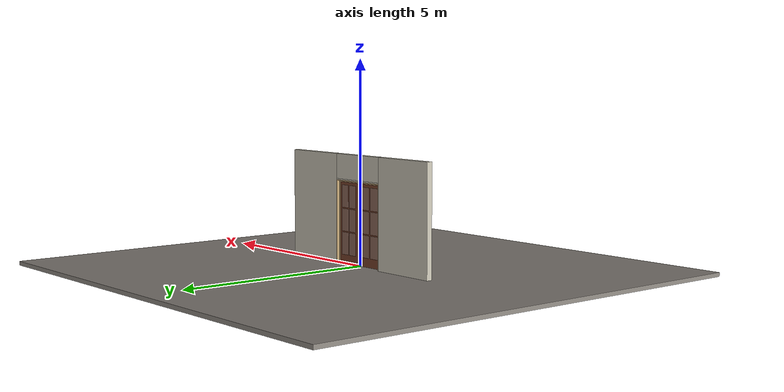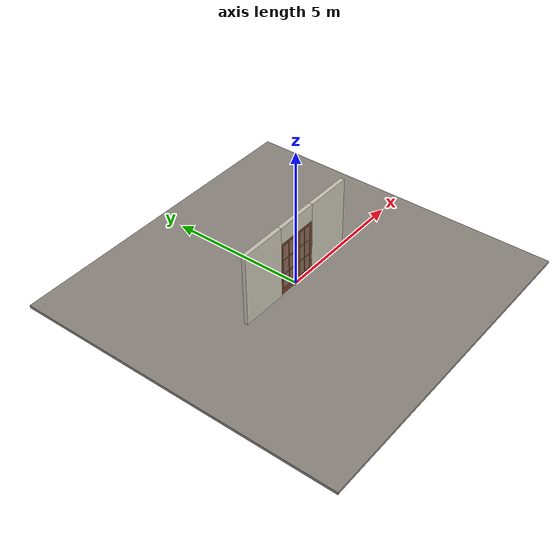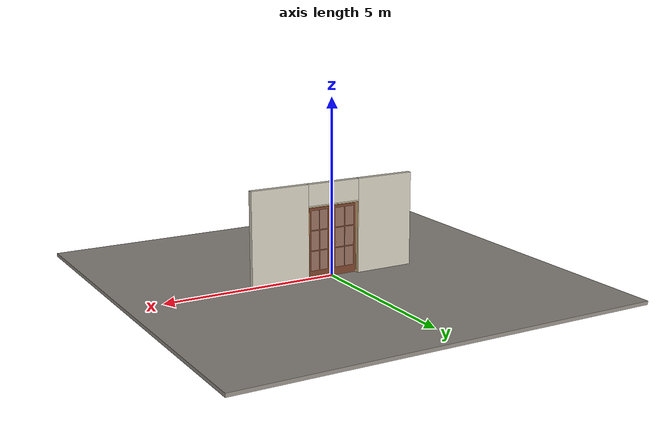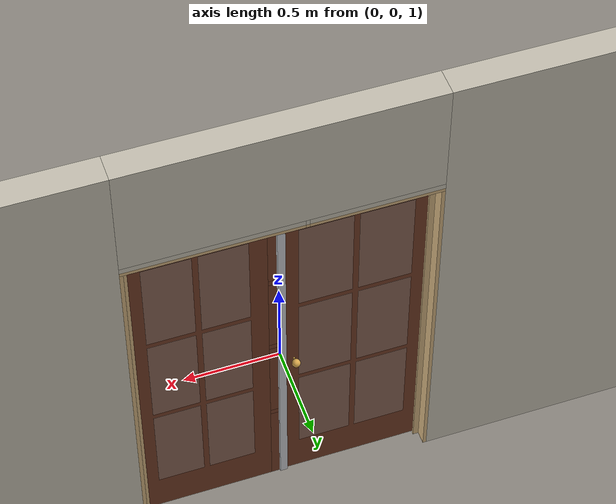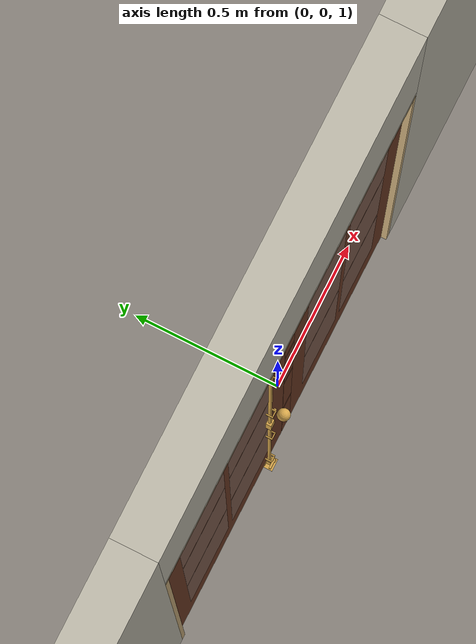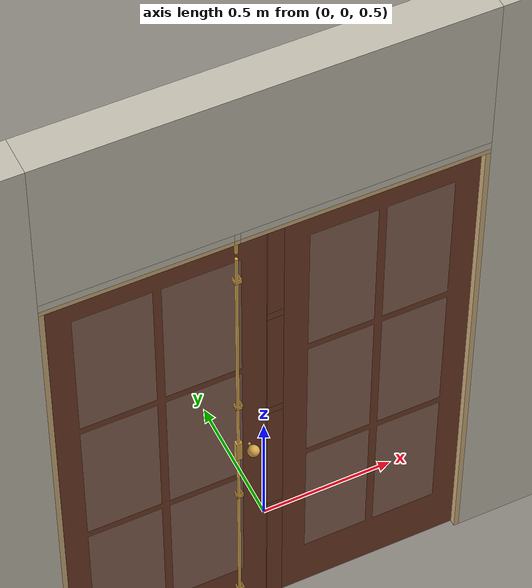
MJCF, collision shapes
<?xml version="1.0" ?>
<mujoco model="db0341_swing_double_full">
  <compiler angle="radian" meshdir="../../hardware" texturedir="../../textures" autolimits="true" inertiafromgeom="false"/>
  <option timestep="0.002" integrator="implicitfast" cone="elliptic" impratio="10" noslip_iterations="3">
    <flag multiccd="enable"/>
  </option>
  <size memory="16M"/>
  <default>
    <geom condim="4" solref="0.005 1" solimp="0.95 0.99 0.001"/>
    <joint solreflimit="0.005 1" solimplimit="0.95 0.99 0.001"/>
    <tendon solreflimit="0.005 1"/>
    <equality solref="0.002 1"/>
  </default>
  <visual>
    <headlight ambient="0.4 0.4 0.4" diffuse="0.7 0.7 0.7" specular="0.2 0.2 0.2"/>
    <quality shadowsize="4096"/>
    <map znear="0.01" zfar="60"/>
  </visual>
  <asset>
    <mesh name="cyl_face_e9e5036966" file="cyl_face_e9e5036966.obj"/>
    <mesh name="hinge_2af0f4d6ca" file="hinge_2af0f4d6ca.obj"/>
    <mesh name="hinge_jamb_c0c0a62ada" file="hinge_jamb_c0c0a62ada.obj"/>
    <mesh name="knob_9525440cc3" file="knob_9525440cc3.obj"/>
    <material name="mat_floor" rgba="0.55 0.53 0.5 1" specular="0.2" shininess="0.15" reflectance="0"/>
    <material name="mat_wall" rgba="0.78 0.76 0.7 1" specular="0.2" shininess="0.1" reflectance="0"/>
    <material name="mat_leaf_a" rgba="0.45 0.24 0.15 1" specular="0.2" shininess="0.55" reflectance="0"/>
    <material name="mat_glass" rgba="0.85 0.92 0.95 0.25" specular="0.2" shininess="0.95" reflectance="0.1"/>
    <material name="mat_hinge" rgba="0.65 0.66 0.68 1" specular="0.74" shininess="0.5" reflectance="0.36"/>
    <material name="mat_op_brass" rgba="0.85 0.66 0.3 1" specular="0.8" shininess="0.75" reflectance="0.4"/>
    <material name="mat_trim" rgba="0.85 0.66 0.3 1" specular="0.8" shininess="0.75" reflectance="0.4"/>
    <material name="mat_deadbolt" rgba="0.85 0.66 0.3 1" specular="0.8" shininess="0.75" reflectance="0.4"/>
    <material name="mat_leaf_b" rgba="0.45 0.24 0.15 1" specular="0.2" shininess="0.55" reflectance="0"/>
    <material name="mat_frame" rgba="0.82 0.7 0.5 1" specular="0.2" shininess="0.45" reflectance="0"/>
    <material name="mat_astragal" rgba="0.8 0.81 0.83 1" specular="0.8" shininess="0.6" reflectance="0.4"/>
    <texture name="skybox" type="skybox" builtin="gradient" rgb1="0.6 0.7 0.85" rgb2="0.9 0.92 0.95" width="256" height="256"/>
  </asset>
  <worldbody>
    <light name="sun" pos="1.5 -2.5 4" dir="-0.3 0.5 -0.8" directional="true" diffuse="0.8 0.8 0.8" specular="0.3 0.3 0.3" castshadow="true"/>
    <light name="fill" pos="-1.5 2.5 3" dir="0.3 -0.5 -0.7" directional="true" diffuse="0.35 0.35 0.4" castshadow="false"/>
    <camera name="robot_view" pos="0 -2.511687 1.734312" xyaxes="1 0 0 0 0.26963 0.962964" fovy="52"/>
    <camera name="far_view" pos="0 2.572687 1.734312" xyaxes="-1 0 0 0 -0.26963 0.962964" fovy="52"/>
    <camera name="iso" pos="-1.932062 -2.104938 2.141063" xyaxes="0.741536 -0.670913 0 0.242917 0.268487 0.932151" fovy="46"/>
    <camera name="detail_handle" pos="0.1135 -0.857 1.245" xyaxes="0.97561 0.219512 0 -0.070934 0.315262 0.94635" fovy="38"/>
    <geom name="floor" type="box" size="6 6 0.05" pos="0 0 -0.05" material="mat_floor" group="0" contype="1" conaffinity="1" friction="0.8 0.005 0.0001" density="2400"/>
    <geom name="wall_left" type="box" size="0.85725 0.0725 1.35" pos="-1.64275 0.0305 1.35" material="mat_wall" group="0" contype="1" conaffinity="1" friction="0.6 0.005 0.0001" density="800"/>
    <geom name="wall_right" type="box" size="0.85725 0.0725 1.35" pos="1.64275 0.0305 1.35" material="mat_wall" group="0" contype="1" conaffinity="1" friction="0.6 0.005 0.0001" density="800"/>
    <geom name="wall_header" type="box" size="0.7855 0.0725 0.303" pos="0 0.0305 2.397" material="mat_wall" group="0" contype="1" conaffinity="1" friction="0.6 0.005 0.0001" density="800"/>
    <geom name="hinge_0_jamb" type="mesh" mesh="hinge_jamb_c0c0a62ada" pos="-0.7635 -0.029 0.266" material="mat_hinge" group="1" contype="0" conaffinity="0" density="7850"/>
    <geom name="hinge_1_jamb" type="mesh" mesh="hinge_jamb_c0c0a62ada" pos="-0.7635 -0.029 1.0285" material="mat_hinge" group="1" contype="0" conaffinity="0" density="7850"/>
    <geom name="hinge_2_jamb" type="mesh" mesh="hinge_jamb_c0c0a62ada" pos="-0.7635 -0.029 1.861" material="mat_hinge" group="1" contype="0" conaffinity="0" density="7850"/>
    <geom name="leaf_a_cremone_floor_strike_plate" type="box" size="0.023 0.023 0.00075" pos="-0.1115 -0.031 0.00075" material="mat_op_brass" group="0" contype="1" conaffinity="1" friction="0.6 0.005 0.0001" density="7850"/>
    <geom name="leaf_a_cremone_floor_strike_p" type="box" size="0.019 0.004 0.00575" pos="-0.1115 -0.019 0.00725" material="mat_op_brass" group="0" contype="1" conaffinity="1" friction="0.6 0.005 0.0001" density="7850"/>
    <geom name="leaf_a_cremone_floor_strike_n" type="box" size="0.019 0.004 0.00575" pos="-0.1115 -0.043 0.00725" material="mat_op_brass" group="0" contype="1" conaffinity="1" friction="0.6 0.005 0.0001" density="7850"/>
    <geom name="leaf_a_cremone_floor_strike_e" type="box" size="0.004 0.019 0.00575" pos="-0.0995 -0.031 0.00725" material="mat_op_brass" group="0" contype="1" conaffinity="1" friction="0.6 0.005 0.0001" density="7850"/>
    <geom name="hinge_0_jamb_2" type="mesh" mesh="hinge_jamb_c0c0a62ada" pos="0.7635 -0.029 0.259" quat="0 0 1 0" material="mat_hinge" group="1" contype="0" conaffinity="0" density="7850"/>
    <geom name="hinge_1_jamb_2" type="mesh" mesh="hinge_jamb_c0c0a62ada" pos="0.7635 -0.029 1.025" quat="0 0 1 0" material="mat_hinge" group="1" contype="0" conaffinity="0" density="7850"/>
    <geom name="hinge_2_jamb_2" type="mesh" mesh="hinge_jamb_c0c0a62ada" pos="0.7635 -0.029 1.861" quat="0 0 1 0" material="mat_hinge" group="1" contype="0" conaffinity="0" density="7850"/>
    <geom name="jamb_l" type="box" size="0.0095 0.0725 1.0225" pos="-0.776 0.0305 1.0225" material="mat_frame" group="0" contype="1" conaffinity="1" friction="0.6 0.005 0.0001" density="300"/>
    <geom name="jamb_r" type="box" size="0.0095 0.0725 1.0225" pos="0.776 0.0305 1.0225" material="mat_frame" group="0" contype="1" conaffinity="1" friction="0.6 0.005 0.0001" density="300"/>
    <geom name="jamb_head_pwall_-111_n" type="box" size="0.01 0.00175 0.0095" pos="-0.1115 -0.04025 2.0545" material="mat_frame" group="0" contype="1" conaffinity="1" friction="0.6 0.005 0.0001" density="300"/>
    <geom name="jamb_head_pwall_-111_p" type="box" size="0.01 0.06325 0.0095" pos="-0.1115 0.03975 2.0545" material="mat_frame" group="0" contype="1" conaffinity="1" friction="0.6 0.005 0.0001" density="300"/>
    <geom name="jamb_head_0" type="box" size="0.332 0.0725 0.0095" pos="-0.4535 0.0305 2.0545" material="mat_frame" group="0" contype="1" conaffinity="1" friction="0.6 0.005 0.0001" density="300"/>
    <geom name="jamb_head_1" type="box" size="0.4435 0.0725 0.0095" pos="0.342 0.0305 2.0545" material="mat_frame" group="0" contype="1" conaffinity="1" friction="0.6 0.005 0.0001" density="300"/>
    <geom name="head_stud_pwall_-111_n" type="box" size="0.01 0.00175 0.015" pos="-0.1115 -0.04025 2.079" material="mat_wall" group="0" contype="1" conaffinity="1" friction="0.6 0.005 0.0001" density="500"/>
    <geom name="head_stud_pwall_-111_p" type="box" size="0.01 0.06325 0.015" pos="-0.1115 0.03975 2.079" material="mat_wall" group="0" contype="1" conaffinity="1" friction="0.6 0.005 0.0001" density="500"/>
    <geom name="head_stud_pback_-111" type="box" size="0.01 0.0075 0.0115" pos="-0.1115 -0.031 2.0825" material="mat_wall" group="0" contype="1" conaffinity="1" friction="0.6 0.005 0.0001" density="500"/>
    <geom name="head_stud_0" type="box" size="0.332 0.0725 0.015" pos="-0.4535 0.0305 2.079" material="mat_wall" group="0" contype="1" conaffinity="1" friction="0.6 0.005 0.0001" density="500"/>
    <geom name="head_stud_1" type="box" size="0.4435 0.0725 0.015" pos="0.342 0.0305 2.079" material="mat_wall" group="0" contype="1" conaffinity="1" friction="0.6 0.005 0.0001" density="500"/>
    <geom name="stop_l" type="box" size="0.015 0.006 1.0225" pos="-0.7515 0.0285 1.0225" material="mat_frame" group="0" contype="1" conaffinity="1" friction="0.6 0.005 0.0001" density="300"/>
    <geom name="stop_r" type="box" size="0.015 0.006 1.0225" pos="0.7515 0.0285 1.0225" material="mat_frame" group="0" contype="1" conaffinity="1" friction="0.6 0.005 0.0001" density="300"/>
    <geom name="stop_head" type="box" size="0.7665 0.006 0.015" pos="0 0.0285 2.03" material="mat_frame" group="0" contype="1" conaffinity="1" friction="0.6 0.005 0.0001" density="300"/>
    <site name="approach_point" pos="0 -1.5 0" quat="1 0 0 0" size="0.05" rgba="0.2 0.9 0.2 0.5" group="4"/>
    <site name="goal_point" pos="0 1.5 0" quat="1 0 0 0" size="0.05" rgba="0.2 0.9 0.2 0.5" group="4"/>
    <site name="door_plane_center" pos="0 0 1.0225" quat="1 0 0 0" size="0.02" rgba="0.2 0.9 0.2 0.5" group="4"/>
    <site name="approach_point_2" pos="0 -1.5 0" quat="1 0 0 0" size="0.05" rgba="0.2 0.9 0.2 0.5" group="4"/>
    <site name="goal_point_2" pos="0 1.5 0" quat="1 0 0 0" size="0.05" rgba="0.2 0.9 0.2 0.5" group="4"/>
    <site name="door_plane_center_2" pos="0 0 1.0225" quat="1 0 0 0" size="0.02" rgba="0.2 0.9 0.2 0.5" group="4"/>
    <site name="approach_point_3" pos="0 -1.5 0" quat="1 0 0 0" size="0.05" rgba="0.2 0.9 0.2 0.5" group="4"/>
    <site name="goal_point_3" pos="0 1.5 0" quat="1 0 0 0" size="0.05" rgba="0.2 0.9 0.2 0.5" group="4"/>
    <site name="door_plane_center_3" pos="0 0 1.0225" quat="1 0 0 0" size="0.02" rgba="0.2 0.9 0.2 0.5" group="4"/>
    <body name="leaf_a" pos="-0.7665 0 0">
      <inertial pos="0.411834 -0.003892 1.026605" mass="32.648345" quat="0.502606 0.495901 -0.503976 0.497471" diaginertia="1.78300955 10.913403665 12.680934017"/>
      <joint name="leaf_a_hinge" type="hinge" axis="0 0 -1" pos="0.003 -0.029 0" limited="true" range="0 1.570796" solreflimit="0.02 1" damping="0.173726" frictionloss="0.993105" armature="0.02"/>
      <geom name="leaf_a_slab" type="box" size="0.381 0.022 1.0125" pos="0.384 0 1.0285" material="mat_leaf_a" group="0" contype="1" conaffinity="1" friction="0.35 0.005 0.0001" density="1"/>
      <geom name="leaf_a_glass_0" type="box" size="0.138 0.0228 0.2735" pos="0.231 0 0.51225" material="mat_glass" group="1" contype="0" conaffinity="0" density="1"/>
      <geom name="leaf_a_glass_1" type="box" size="0.138 0.0228 0.2735" pos="0.537 0 0.51225" material="mat_glass" group="1" contype="0" conaffinity="0" density="1"/>
      <geom name="leaf_a_glass_2" type="box" size="0.138 0.0228 0.2735" pos="0.231 0 1.08925" material="mat_glass" group="1" contype="0" conaffinity="0" density="1"/>
      <geom name="leaf_a_glass_3" type="box" size="0.138 0.0228 0.2735" pos="0.537 0 1.08925" material="mat_glass" group="1" contype="0" conaffinity="0" density="1"/>
      <geom name="leaf_a_glass_4" type="box" size="0.138 0.0228 0.2735" pos="0.231 0 1.66625" material="mat_glass" group="1" contype="0" conaffinity="0" density="1"/>
      <geom name="leaf_a_glass_5" type="box" size="0.138 0.0228 0.2735" pos="0.537 0 1.66625" material="mat_glass" group="1" contype="0" conaffinity="0" density="1"/>
      <geom name="hinge_0" type="mesh" mesh="hinge_2af0f4d6ca" pos="0.003 -0.029 0.266" material="mat_hinge" group="1" contype="0" conaffinity="0" density="7850"/>
      <geom name="hinge_1" type="mesh" mesh="hinge_2af0f4d6ca" pos="0.003 -0.029 1.0285" material="mat_hinge" group="1" contype="0" conaffinity="0" density="7850"/>
      <geom name="hinge_2" type="mesh" mesh="hinge_2af0f4d6ca" pos="0.003 -0.029 1.861" material="mat_hinge" group="1" contype="0" conaffinity="0" density="7850"/>
      <geom name="leaf_a_cremone_rod_up" type="cylinder" size="0.006 0.4805" pos="0.655 -0.031 1.4855" material="mat_op_brass" group="1" contype="0" conaffinity="0" density="7850"/>
      <geom name="leaf_a_cremone_rod_down" type="cylinder" size="0.006 0.4395" pos="0.655 -0.031 0.4855" material="mat_op_brass" group="1" contype="0" conaffinity="0" density="7850"/>
      <geom name="leaf_a_cremone_gearbox" type="box" size="0.012 0.01 0.045" pos="0.655 -0.031 0.965" material="mat_op_brass" group="1" contype="0" conaffinity="0" density="7850"/>
      <geom name="leaf_a_cremone_guide_0_leg_n" type="box" size="0.007 0.002 0.0125" pos="0.666 -0.0345 1.215" quat="0.5 0.5 -0.5 0.5" material="mat_op_brass" group="1" contype="0" conaffinity="0" density="7800"/>
      <geom name="leaf_a_cremone_guide_0_leg_p" type="box" size="0.007 0.002 0.0125" pos="0.644 -0.0345 1.215" quat="0.5 0.5 -0.5 0.5" material="mat_op_brass" group="1" contype="0" conaffinity="0" density="7800"/>
      <geom name="leaf_a_cremone_guide_0_bridge" type="box" size="0.007 0.013 0.002" pos="0.655 -0.045 1.215" quat="0.5 0.5 -0.5 0.5" material="mat_op_brass" group="1" contype="0" conaffinity="0" density="7800"/>
      <geom name="leaf_a_cremone_guide_1_leg_n" type="box" size="0.007 0.002 0.0125" pos="0.666 -0.0345 1.866" quat="0.5 0.5 -0.5 0.5" material="mat_op_brass" group="1" contype="0" conaffinity="0" density="7800"/>
      <geom name="leaf_a_cremone_guide_1_leg_p" type="box" size="0.007 0.002 0.0125" pos="0.644 -0.0345 1.866" quat="0.5 0.5 -0.5 0.5" material="mat_op_brass" group="1" contype="0" conaffinity="0" density="7800"/>
      <geom name="leaf_a_cremone_guide_1_bridge" type="box" size="0.007 0.013 0.002" pos="0.655 -0.045 1.866" quat="0.5 0.5 -0.5 0.5" material="mat_op_brass" group="1" contype="0" conaffinity="0" density="7800"/>
      <geom name="leaf_a_cremone_guide_2_leg_n" type="box" size="0.007 0.002 0.0125" pos="0.666 -0.0345 0.715" quat="0.5 0.5 -0.5 0.5" material="mat_op_brass" group="1" contype="0" conaffinity="0" density="7800"/>
      <geom name="leaf_a_cremone_guide_2_leg_p" type="box" size="0.007 0.002 0.0125" pos="0.644 -0.0345 0.715" quat="0.5 0.5 -0.5 0.5" material="mat_op_brass" group="1" contype="0" conaffinity="0" density="7800"/>
      <geom name="leaf_a_cremone_guide_2_bridge" type="box" size="0.007 0.013 0.002" pos="0.655 -0.045 0.715" quat="0.5 0.5 -0.5 0.5" material="mat_op_brass" group="1" contype="0" conaffinity="0" density="7800"/>
      <geom name="leaf_a_cremone_guide_3_leg_n" type="box" size="0.007 0.002 0.0125" pos="0.666 -0.0345 0.146" quat="0.5 0.5 -0.5 0.5" material="mat_op_brass" group="1" contype="0" conaffinity="0" density="7800"/>
      <geom name="leaf_a_cremone_guide_3_leg_p" type="box" size="0.007 0.002 0.0125" pos="0.644 -0.0345 0.146" quat="0.5 0.5 -0.5 0.5" material="mat_op_brass" group="1" contype="0" conaffinity="0" density="7800"/>
      <geom name="leaf_a_cremone_guide_3_bridge" type="box" size="0.007 0.013 0.002" pos="0.655 -0.045 0.146" quat="0.5 0.5 -0.5 0.5" material="mat_op_brass" group="1" contype="0" conaffinity="0" density="7800"/>
      <geom name="leaf_a_deadbolt_faceplate" type="box" size="0.0006 0.014 0.0245" pos="0.7644 0 1.105" material="mat_deadbolt" group="1" contype="0" conaffinity="0" density="8500"/>
      <geom name="leaf_a_deadbolt_cylinder_face" type="mesh" mesh="cyl_face_e9e5036966" pos="0.7 -0.022 1.105" quat="0.707107 0.707107 0 0" material="mat_deadbolt" group="1" contype="0" conaffinity="0" density="7100"/>
      <geom name="leaf_a_multipoint_upper_faceplate" type="box" size="0.0006 0.014 0.0245" pos="0.7644 0 1.605" material="mat_deadbolt" group="1" contype="0" conaffinity="0" density="8500"/>
      <geom name="leaf_a_multipoint_lower_faceplate" type="box" size="0.0006 0.014 0.0245" pos="0.7644 0 0.555" material="mat_deadbolt" group="1" contype="0" conaffinity="0" density="8500"/>
      <geom name="leaf_a_multipoint_strip" type="box" size="0.0004 0.01 0.9925" pos="0.7646 0 1.0285" material="mat_deadbolt" group="1" contype="0" conaffinity="0" density="8500"/>
      <site name="leaf_a_edge_mid" pos="0.765 0 1.0125" quat="1 0 0 0" size="0.02" rgba="0.2 0.9 0.2 0.5" group="4"/>
      <body name="leaf_a_handle" pos="0.7 0 0.965">
        <inertial pos="0 0 0" mass="0.732315" quat="0.5 0.5 0.5 0.5" diaginertia="0.000141246 0.002063101 0.002063101"/>
        <joint name="leaf_a_handle_hinge" type="hinge" axis="0 -1 0" limited="true" range="0 0.03" damping="0.5" frictionloss="0.4" armature="0.01"/>
        <geom name="leaf_a_handle_spindle" type="cylinder" size="0.006 0.03" pos="0 0 0" quat="0.707107 -0.707107 0 0" material="mat_op_brass" group="1" contype="0" conaffinity="0" density="7850"/>
        <geom name="leaf_a_handle_cremone_knob_n" type="mesh" mesh="knob_9525440cc3" pos="0 -0.022 0" quat="0.707107 0.707107 0 0" material="mat_op_brass" group="1" contype="0" conaffinity="0" density="3000"/>
        <geom name="leaf_a_handle_cremone_col_n" type="sphere" size="0.022" pos="0 -0.057 0" material="mat_op_brass" group="0" contype="1" conaffinity="1" friction="0.6 0.005 0.0001" density="3000"/>
        <geom name="leaf_a_handle_cremone_knob_p" type="mesh" mesh="knob_9525440cc3" pos="0 0.022 0" quat="-0.707107 0.707107 0 0" material="mat_op_brass" group="1" contype="0" conaffinity="0" density="3000"/>
        <geom name="leaf_a_handle_cremone_col_p" type="sphere" size="0.022" pos="0 0.057 0" material="mat_op_brass" group="0" contype="1" conaffinity="1" friction="0.6 0.005 0.0001" density="3000"/>
        <site name="leaf_a_handle_grip_n" pos="0 -0.057 0" quat="1 0 0 0" size="0.012" rgba="0.2 0.9 0.2 0.5" group="4"/>
        <site name="leaf_a_handle_grip_p" pos="0 0.057 0" quat="1 0 0 0" size="0.012" rgba="0.2 0.9 0.2 0.5" group="4"/>
      </body>
      <body name="leaf_a_cremone_top_bolt" pos="0.655 -0.031 2.041">
        <inertial pos="0 0 -0.016" mass="0.060371" quat="0.707107 0 0.707107 0" diaginertia="0.000001061 0.000023913 0.000023913"/>
        <joint name="leaf_a_cremone_top_bolt_slide" type="slide" axis="0 0 -1" limited="true" range="0 0.02" damping="2" frictionloss="0.5" armature="0.1"/>
        <geom name="leaf_a_cremone_top_bolt_geom" type="capsule" size="0.006 0.03" pos="0 0 -0.016" material="mat_op_brass" group="0" contype="1" conaffinity="1" friction="0.4 0.005 0.0001" density="7850"/>
      </body>
      <body name="leaf_a_cremone_bottom_bolt" pos="0.655 -0.031 0.03">
        <inertial pos="0 0 0.004" mass="0.092316" quat="0.707107 0 0.707107 0" diaginertia="0.000003016 0.000029203 0.000029203"/>
        <joint name="leaf_a_cremone_bottom_bolt_slide" type="slide" axis="0 0 1" limited="true" range="0 0.026" damping="2" frictionloss="0.5" armature="0.1"/>
        <geom name="leaf_a_cremone_bottom_bolt_geom" type="box" size="0.007 0.007 0.03" pos="0 0 0.004" material="mat_op_brass" group="0" contype="1" conaffinity="1" friction="0.6 0.005 0.0001" density="7850"/>
      </body>
      <body name="leaf_a_deadbolt" pos="0.765 0 1.105">
        <inertial pos="-0.005 0 0" mass="0.17" quat="0 0 0.707107 0.707107" diaginertia="0.000012481 0.000039043 0.000044271"/>
        <geom name="leaf_a_deadbolt_box" type="box" size="0.025 0.008 0.0125" pos="-0.005 0 0" material="mat_deadbolt" group="0" contype="1" conaffinity="1" friction="0.3 0.005 0.0001" density="8500"/>
      </body>
      <body name="leaf_a_multipoint_upper" pos="0.765 0 1.605">
        <inertial pos="-0.005 0 0" mass="0.17" quat="0 0 0.707107 0.707107" diaginertia="0.000012481 0.000039043 0.000044271"/>
        <geom name="leaf_a_multipoint_upper_box" type="box" size="0.025 0.008 0.0125" pos="-0.005 0 0" material="mat_deadbolt" group="0" contype="1" conaffinity="1" friction="0.3 0.005 0.0001" density="8500"/>
      </body>
      <body name="leaf_a_multipoint_lower" pos="0.765 0 0.555">
        <inertial pos="-0.005 0 0" mass="0.17" quat="0 0 0.707107 0.707107" diaginertia="0.000012481 0.000039043 0.000044271"/>
        <geom name="leaf_a_multipoint_lower_box" type="box" size="0.025 0.008 0.0125" pos="-0.005 0 0" material="mat_deadbolt" group="0" contype="1" conaffinity="1" friction="0.3 0.005 0.0001" density="8500"/>
      </body>
    </body>
    <body name="leaf_b" pos="0.7665 0 0">
      <inertial pos="-0.415718 0.004678 1.024127" mass="31.691766" quat="0.508457 0.492759 -0.507174 0.49136" diaginertia="1.945437189 10.896153695 12.828041647"/>
      <joint name="leaf_b_hinge" type="hinge" axis="0 0 1" pos="-0.003 -0.029 0" limited="true" range="0 0.001" solreflimit="0.02 1" damping="0.173726" frictionloss="0.993105" armature="0.02"/>
      <geom name="leaf_b_edge_555_wall_n" type="box" size="0.03 0.00625 0.0155" pos="-0.735 0.01575 0.555" material="mat_leaf_b" group="0" contype="1" conaffinity="1" friction="0.6 0.005 0.0001" density="1"/>
      <geom name="leaf_b_edge_555_wall_p" type="box" size="0.03 0.00625 0.0155" pos="-0.735 -0.01575 0.555" material="mat_leaf_b" group="0" contype="1" conaffinity="1" friction="0.6 0.005 0.0001" density="1"/>
      <geom name="leaf_b_edge_555_back" type="box" size="0.018 0.0095 0.0155" pos="-0.723 0 0.555" material="mat_leaf_b" group="0" contype="1" conaffinity="1" friction="0.6 0.005 0.0001" density="1"/>
      <geom name="leaf_b_edge_1105_wall_n" type="box" size="0.03 0.00625 0.0155" pos="-0.735 0.01575 1.105" material="mat_leaf_b" group="0" contype="1" conaffinity="1" friction="0.6 0.005 0.0001" density="1"/>
      <geom name="leaf_b_edge_1105_wall_p" type="box" size="0.03 0.00625 0.0155" pos="-0.735 -0.01575 1.105" material="mat_leaf_b" group="0" contype="1" conaffinity="1" friction="0.6 0.005 0.0001" density="1"/>
      <geom name="leaf_b_edge_1105_back" type="box" size="0.018 0.0095 0.0155" pos="-0.723 0 1.105" material="mat_leaf_b" group="0" contype="1" conaffinity="1" friction="0.6 0.005 0.0001" density="1"/>
      <geom name="leaf_b_edge_1605_wall_n" type="box" size="0.03 0.00625 0.0155" pos="-0.735 0.01575 1.605" material="mat_leaf_b" group="0" contype="1" conaffinity="1" friction="0.6 0.005 0.0001" density="1"/>
      <geom name="leaf_b_edge_1605_wall_p" type="box" size="0.03 0.00625 0.0155" pos="-0.735 -0.01575 1.605" material="mat_leaf_b" group="0" contype="1" conaffinity="1" friction="0.6 0.005 0.0001" density="1"/>
      <geom name="leaf_b_edge_1605_back" type="box" size="0.018 0.0095 0.0155" pos="-0.723 0 1.605" material="mat_leaf_b" group="0" contype="1" conaffinity="1" friction="0.6 0.005 0.0001" density="1"/>
      <geom name="leaf_b_edge_seg_0" type="box" size="0.03 0.022 0.26525" pos="-0.735 0 0.27425" material="mat_leaf_b" group="0" contype="1" conaffinity="1" friction="0.6 0.005 0.0001" density="1"/>
      <geom name="leaf_b_edge_seg_1" type="box" size="0.03 0.022 0.2595" pos="-0.735 0 0.83" material="mat_leaf_b" group="0" contype="1" conaffinity="1" friction="0.6 0.005 0.0001" density="1"/>
      <geom name="leaf_b_edge_seg_2" type="box" size="0.03 0.022 0.2345" pos="-0.735 0 1.355" material="mat_leaf_b" group="0" contype="1" conaffinity="1" friction="0.6 0.005 0.0001" density="1"/>
      <geom name="leaf_b_edge_seg_3" type="box" size="0.03 0.022 0.21025" pos="-0.735 0 1.83075" material="mat_leaf_b" group="0" contype="1" conaffinity="1" friction="0.6 0.005 0.0001" density="1"/>
      <geom name="leaf_b_slab" type="box" size="0.351 0.022 1.016" pos="-0.354 0 1.025" material="mat_leaf_b" group="0" contype="1" conaffinity="1" friction="0.35 0.005 0.0001" density="1"/>
      <geom name="leaf_b_glass_0" type="box" size="0.123 0.0228 0.27448" pos="-0.216 0 0.507" material="mat_glass" group="1" contype="0" conaffinity="0" density="1"/>
      <geom name="leaf_b_glass_1" type="box" size="0.123 0.0228 0.27448" pos="-0.492 0 0.507" material="mat_glass" group="1" contype="0" conaffinity="0" density="1"/>
      <geom name="leaf_b_glass_2" type="box" size="0.123 0.0228 0.27448" pos="-0.216 0 1.08596" material="mat_glass" group="1" contype="0" conaffinity="0" density="1"/>
      <geom name="leaf_b_glass_3" type="box" size="0.123 0.0228 0.27448" pos="-0.492 0 1.08596" material="mat_glass" group="1" contype="0" conaffinity="0" density="1"/>
      <geom name="leaf_b_glass_4" type="box" size="0.123 0.0228 0.27448" pos="-0.216 0 1.66492" material="mat_glass" group="1" contype="0" conaffinity="0" density="1"/>
      <geom name="leaf_b_glass_5" type="box" size="0.123 0.0228 0.27448" pos="-0.492 0 1.66492" material="mat_glass" group="1" contype="0" conaffinity="0" density="1"/>
      <geom name="hinge_0_2" type="mesh" mesh="hinge_2af0f4d6ca" pos="-0.003 -0.029 0.259" quat="0 0 1 0" material="mat_hinge" group="1" contype="0" conaffinity="0" density="7850"/>
      <geom name="hinge_1_2" type="mesh" mesh="hinge_2af0f4d6ca" pos="-0.003 -0.029 1.025" quat="0 0 1 0" material="mat_hinge" group="1" contype="0" conaffinity="0" density="7850"/>
      <geom name="hinge_2_2" type="mesh" mesh="hinge_2af0f4d6ca" pos="-0.003 -0.029 1.861" quat="0 0 1 0" material="mat_hinge" group="1" contype="0" conaffinity="0" density="7850"/>
      <geom name="astragal" type="box" size="0.02 0.008 0.996" pos="-0.769 0.03 1.016" material="mat_astragal" group="0" contype="1" conaffinity="1" friction="0.6 0.005 0.0001" density="2700"/>
      <site name="leaf_b_edge_mid" pos="-0.765 0 1.016" quat="1 0 0 0" size="0.02" rgba="0.2 0.9 0.2 0.5" group="4"/>
    </body>
  </worldbody>
  <equality>
    <joint name="leaf_a_cremone_couple" joint1="leaf_a_cremone_top_bolt_slide" joint2="leaf_a_handle_hinge" polycoef="0 0.012732 0 0 0" active="true"/>
    <joint name="leaf_a_cremone_bottom_couple" joint1="leaf_a_cremone_bottom_bolt_slide" joint2="leaf_a_handle_hinge" polycoef="0 0.016552 0 0 0" active="true"/>
  </equality>
  <sensor>
    <jointpos name="leaf_a_hinge_pos" joint="leaf_a_hinge"/>
    <jointvel name="leaf_a_hinge_vel" joint="leaf_a_hinge"/>
    <jointpos name="leaf_a_handle_hinge_pos" joint="leaf_a_handle_hinge"/>
    <jointvel name="leaf_a_handle_hinge_vel" joint="leaf_a_handle_hinge"/>
    <jointpos name="leaf_a_cremone_top_bolt_slide_pos" joint="leaf_a_cremone_top_bolt_slide"/>
    <jointvel name="leaf_a_cremone_top_bolt_slide_vel" joint="leaf_a_cremone_top_bolt_slide"/>
    <jointpos name="leaf_a_cremone_bottom_bolt_slide_pos" joint="leaf_a_cremone_bottom_bolt_slide"/>
    <jointvel name="leaf_a_cremone_bottom_bolt_slide_vel" joint="leaf_a_cremone_bottom_bolt_slide"/>
    <jointpos name="leaf_b_hinge_pos" joint="leaf_b_hinge"/>
    <jointvel name="leaf_b_hinge_vel" joint="leaf_b_hinge"/>
  </sensor>
</mujoco>
